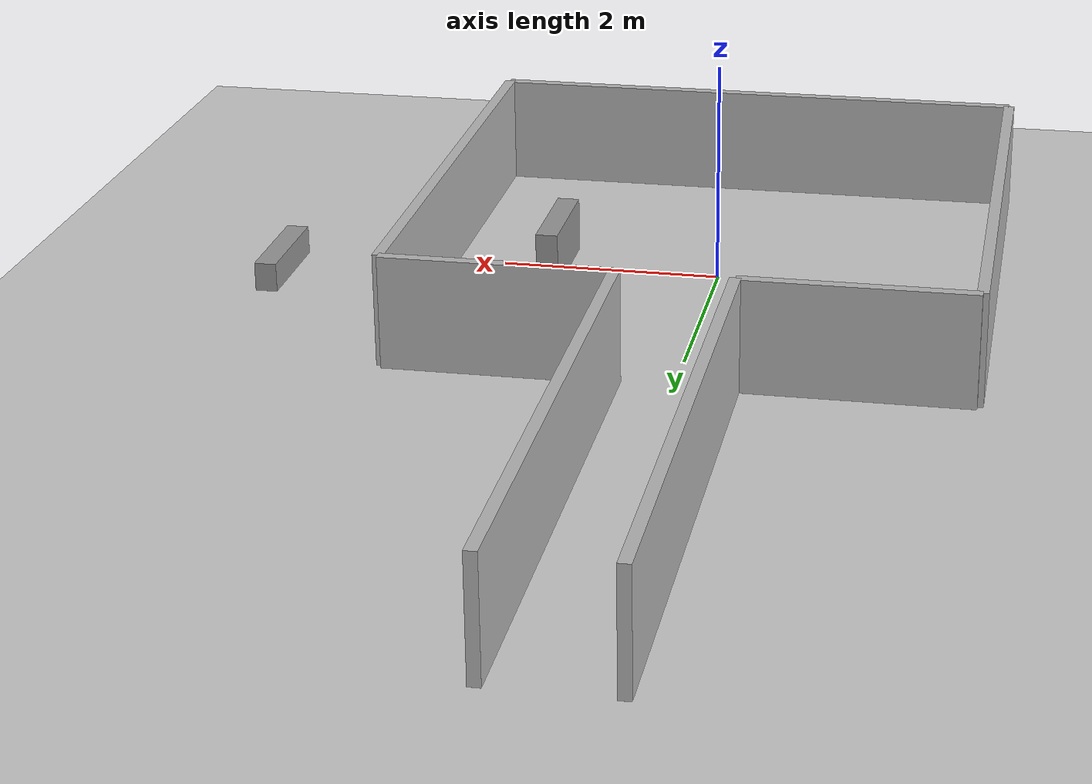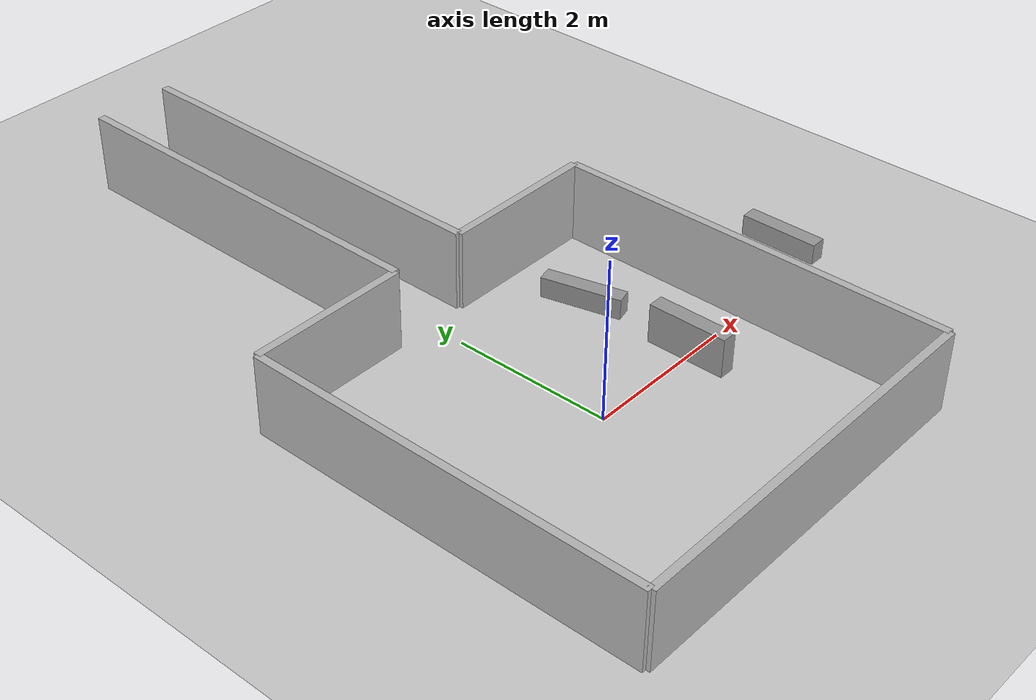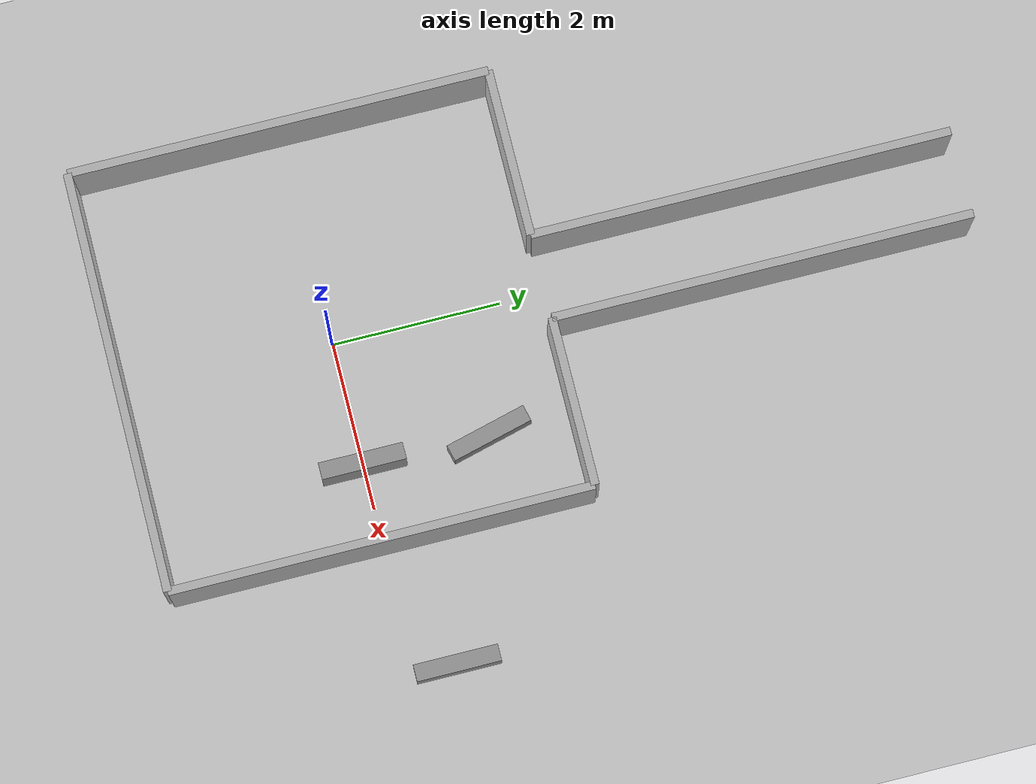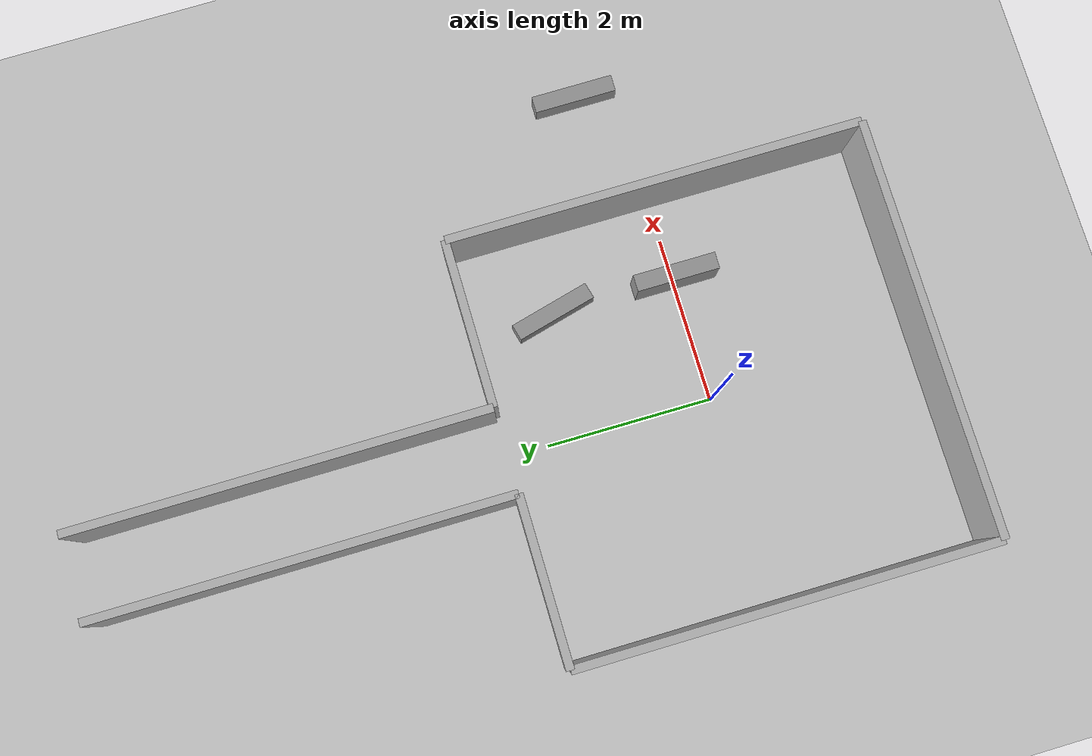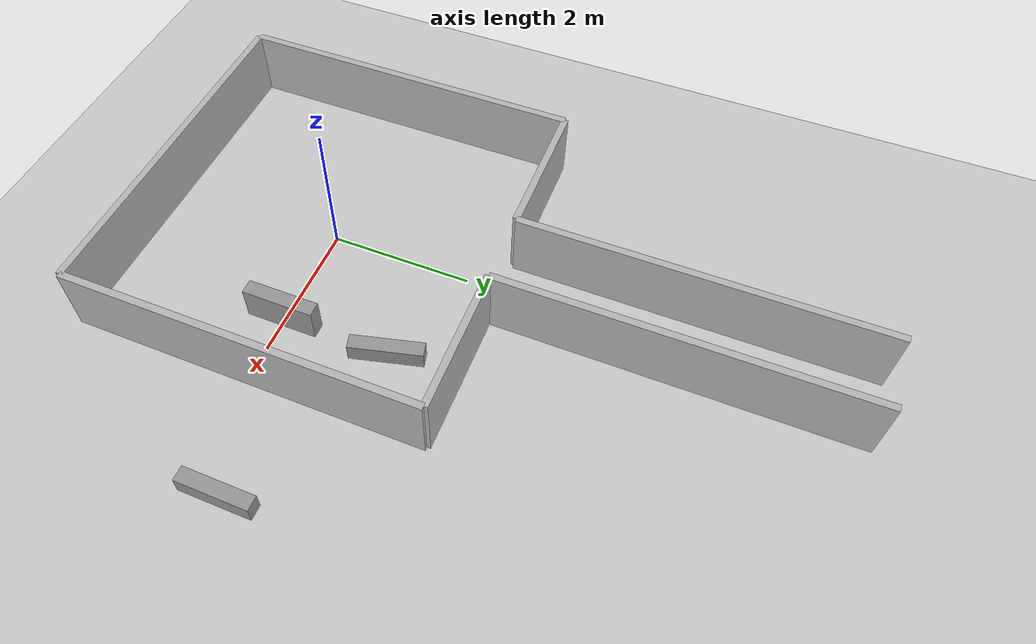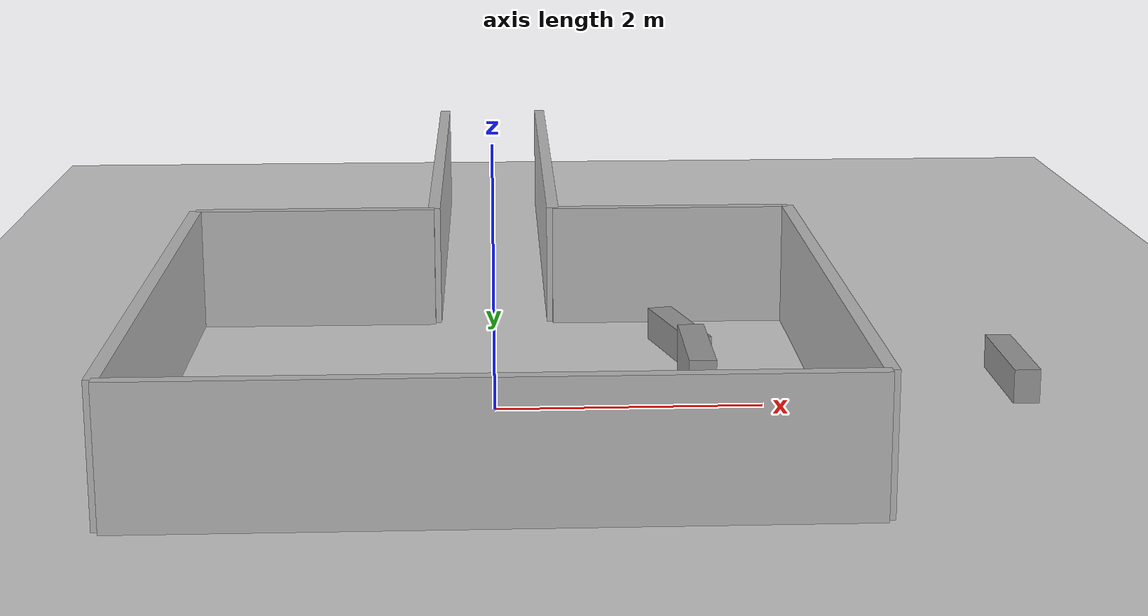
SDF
<sdf version="1.10">
  <world name="empty">

    <plugin filename="gz-sim-physics-system" name="gz::sim::systems::Physics"/>
    <plugin filename="gz-sim-user-commands-system" name="gz::sim::systems::UserCommands"/>
    <plugin filename="gz-sim-scene-broadcaster-system" name="gz::sim::systems::SceneBroadcaster"/>
    <plugin filename="gz-sim8-sensors-system" name="gz::sim::systems::Sensors">
      <render_engine>ogre2</render_engine>
    </plugin>
    <plugin filename="gz-sim8-imu-system" name="gz::sim::systems::Imu"/>

    <gravity>0 0 -9.81</gravity>

    <light name="sun" type="directional">
      <pose>0 0 10 0 0 0</pose>
      <diffuse>0.8 0.8 0.8 1</diffuse>
      <specular>0.2 0.2 0.2 1</specular>
      <direction>-0.5 0.1 -0.9</direction>
    </light>

    <model name="ground_plane">
      <static>true</static>
      <link name="link">
        <collision name="collision">
          <geometry>
            <plane>
              <normal>0 0 1</normal>
              <size>20 20</size>
            </plane>
          </geometry>
        </collision>

        <visual name="visual">
          <geometry>
            <plane>
              <normal>0 0 1</normal>
              <size>20 20</size>
            </plane>
          </geometry>
          <material>
            <ambient>0.8 0.8 0.8 1</ambient>
            <diffuse>0.8 0.8 0.8 1</diffuse>
          </material>
        </visual>
      </link>
    </model>

    <model name="box_obstacle_1">
      <static>true</static>
      <pose>1.5 0 0.25 0 0 0</pose>
      <link name="link">
        <collision name="collision">
          <geometry>
            <box>
              <size>0.2 1.0 0.5</size>
            </box>
          </geometry>
        </collision>
        <visual name="visual">
          <geometry>
            <box>
              <size>0.2 1.0 0.5</size>
            </box>
          </geometry>
          <material>
            <ambient>0.6 0.6 0.6 1</ambient>
            <diffuse>0.6 0.6 0.6 1</diffuse>
          </material>
        </visual>
      </link>
    </model>

    <model name="box_obstacle_2">
      <static>true</static>
      <pose>1.5 1.5 0 0 0 0.25</pose>
      <link name="link">
        <collision name="collision">
          <geometry>
            <box>
              <size>0.2 1.0 0.5</size>
            </box>
          </geometry>
        </collision>
        <visual name="visual">
          <geometry>
            <box>
              <size>0.2 1.0 0.5</size>
            </box>
          </geometry>
          <material>
            <ambient>0.6 0.6 0.6 1</ambient>
            <diffuse>0.6 0.6 0.6 1</diffuse>
          </material>
        </visual>
      </link>
    </model>

    <model name="box_obstacle_3">
      <static>true</static>
      <pose>4 0.5 0 0 0 0</pose>
      <link name="link">
        <collision name="collision">
          <geometry>
            <box>
              <size>0.2 1.0 0.5</size>
            </box>
          </geometry>
        </collision>
        <visual name="visual">
          <geometry>
            <box>
              <size>0.2 1.0 0.5</size>
            </box>
          </geometry>
          <material>
            <ambient>0.6 0.6 0.6 1</ambient>
            <diffuse>0.6 0.6 0.6 1</diffuse>
          </material>
        </visual>
      </link>
    </model>

    <model name="wall_north1">
      <static>true</static>
      <pose>-1.5 2.5 0.5 0 0 0</pose>
      <link name="link">
        <collision name="collision">
          <geometry>
            <box><size>2.0 0.1 1.0</size></box>
          </geometry>
        </collision>
        <visual name="visual">
          <geometry>
            <box><size>2.0 0.1 1.0</size></box>
          </geometry>
        </visual>
      </link>
    </model>

    <model name="wall_north2">
      <static>true</static>
      <pose>1.5 2.5 0.5 0 0 0</pose>
      <link name="link">
        <collision name="collision">
          <geometry>
            <box><size>2.0 0.1 1.0</size></box>
          </geometry>
        </collision>
        <visual name="visual">
          <geometry>
            <box><size>2.0 0.1 1.0</size></box>
          </geometry>
        </visual>
      </link>
    </model>

    <model name="wall_south">
      <static>true</static>
      <pose>0 -2.5 0.5 0 0 0</pose>
      <link name="link">
        <collision name="collision">
          <geometry>
            <box><size>5.0 0.1 1.0</size></box>
          </geometry>
        </collision>
        <visual name="visual">
          <geometry>
            <box><size>5.0 0.1 1.0</size></box>
          </geometry>
        </visual>
      </link>
    </model>

    <model name="wall_east">
      <static>true</static>
      <pose>2.5 0 0.5 0 0 0</pose>
      <link name="link">
        <collision name="collision">
          <geometry>
            <box><size>0.1 5.0 1.0</size></box>
          </geometry>
        </collision>
        <visual name="visual">
          <geometry>
            <box><size>0.1 5.0 1.0</size></box>
          </geometry>
        </visual>
      </link>
    </model>

    <model name="wall_west">
      <static>true</static>
      <pose>-2.5 0 0.5 0 0 0</pose>
      <link name="link">
        <collision name="collision">
          <geometry>
            <box><size>0.1 5.0 1.0</size></box>
          </geometry>
        </collision>
        <visual name="visual">
          <geometry>
            <box><size>0.1 5.0 1.0</size></box>
          </geometry>
        </visual>
      </link>
    </model>

    <model name="wall_coridor_left">
      <static>true</static>
      <pose>0.5 5.0 0.5 0 0 1.5708</pose>
      <link name="link">
        <collision name="collision">
          <geometry>
            <box><size>5.0 0.1 1.0</size></box>
          </geometry>
        </collision>
        <visual name="visual">
          <geometry>
            <box><size>5.0 0.1 1.0</size></box>
          </geometry>
        </visual>
      </link>
    </model>

    <model name="wall_coridor_right">
      <static>true</static>
      <pose>-0.5 5.0 0.5 0 0 1.5708</pose>
      <link name="link">
        <collision name="collision">
          <geometry>
            <box><size>5.0 0.1 1.0</size></box>
          </geometry>
        </collision>
        <visual name="visual">
          <geometry>
            <box><size>5.0 0.1 1.0</size></box>
          </geometry>
        </visual>
      </link>
    </model>

  </world>
</sdf>
